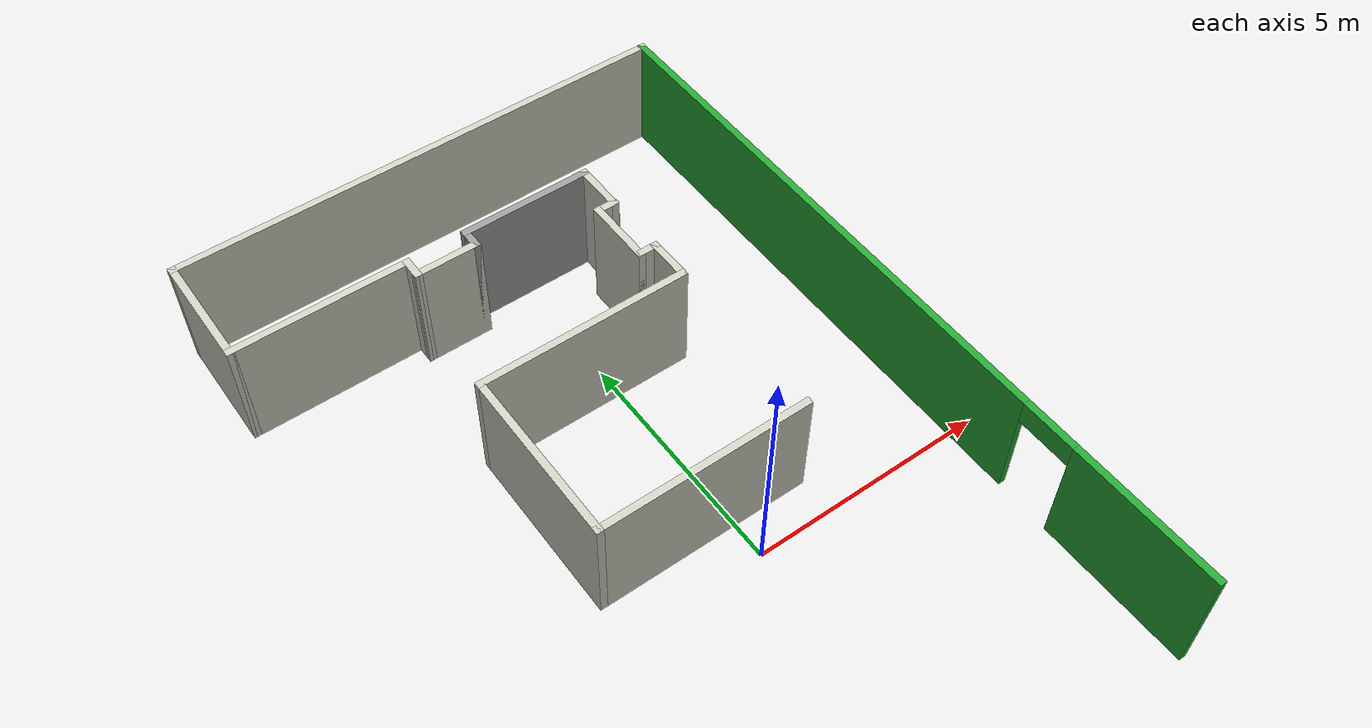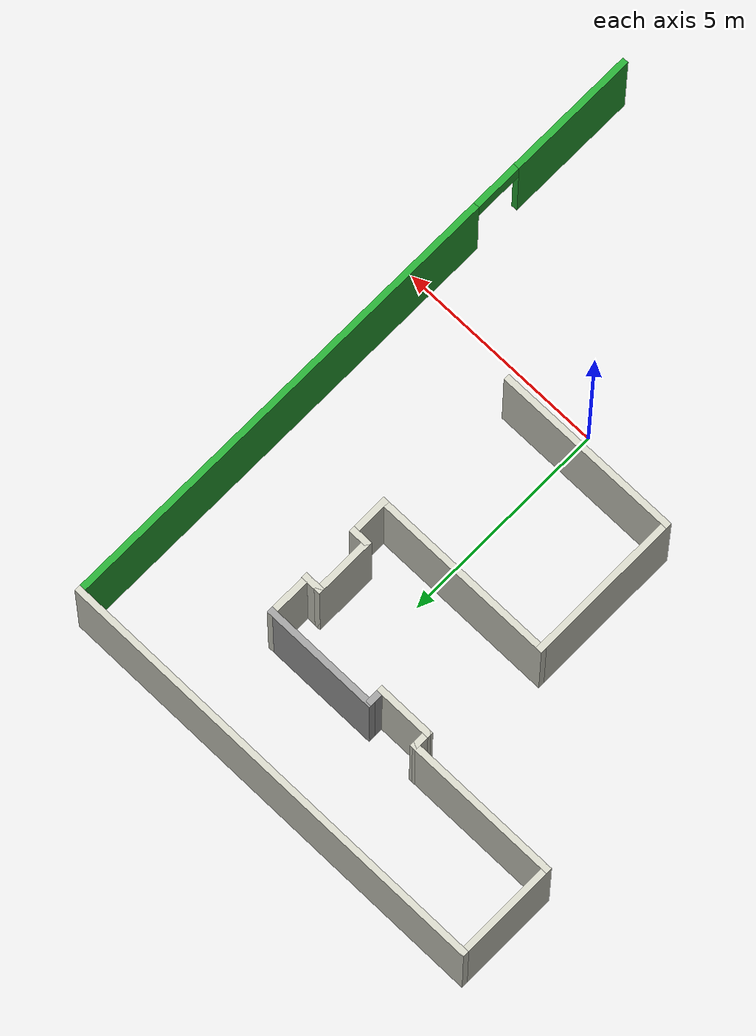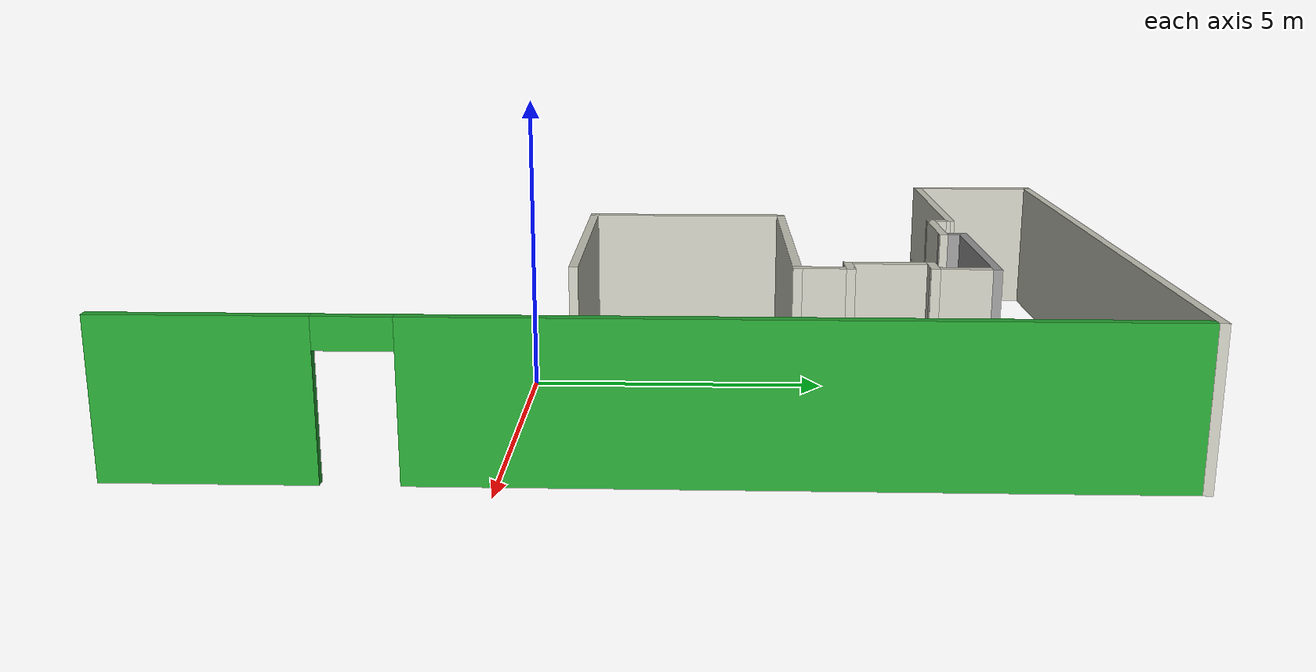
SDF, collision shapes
<sdf version="1.6">
 <model name="teknopark">
  <link name="Wall_20">
   <pose>4.54092 2.156 0 0 -0 1.5708</pose>
   <inertial>
    <mass>1</mass>
    <inertia><ixx>1</ixx><ixy>0</ixy><ixz>0</ixz><iyy>1</iyy><iyz>0</iyz><izz>1</izz></inertia>
   </inertial>
   <visual name="Wall_20_Door">
    <pose>-4.10646 0 0 0 -0 0</pose>
    <geometry>
     <mesh><uri>model://teknopark/meshes/Door_Component_BI3.dae</uri><scale>1.2 1 1</scale></mesh>
    </geometry>
    <material>
     <ambient>0 1 0 1</ambient>
     <diffuse>0 1 0 1</diffuse>
     <specular>0.1 0.1 0.1 1</specular>
     <emissive>0 0 0 1</emissive>
     <script><name>Gazebo/Green</name><uri>__default__</uri></script>
     <shader type="vertex"><normal_map>__default__</normal_map></shader>
    </material>
   </visual>
   <visual name="Wall_20_Visual_1">
    <pose>2.18265 0 1.25 0 -0 0</pose>
    <geometry><box><size>11.4152 0.15 2.5</size></box></geometry>
    <material>
     <script><uri>file://media/materials/scripts/gazebo.material</uri><name>Gazebo/PaintedWall</name></script>
     <ambient>1 1 1 1</ambient>
     <diffuse>0.7 0.7 0.7 1</diffuse>
     <specular>0.01 0.01 0.01 1</specular>
     <emissive>0 0 0 1</emissive>
     <shader type="vertex"><normal_map>__default__</normal_map></shader>
    </material>
   </visual>
   <visual name="ModelPreview_3::Wall_20::visual_3">
    <pose>2.18265 0 1.25 0 -0 0</pose>
    <geometry><box><size>11.4152 0.15 2.5</size></box></geometry>
    <material>
     <script><uri>file://media/materials/scripts/gazebo.material</uri><name>Gazebo/PaintedWall</name></script>
     <ambient>1 1 1 1</ambient>
     <diffuse>0.7 0.7 0.7 1</diffuse>
     <specular>0.01 0.01 0.01 1</specular>
     <emissive>0 0 0 1</emissive>
     <shader type="vertex"><normal_map>__default__</normal_map></shader>
    </material>
   </visual>
   <visual name="Wall_20_Visual_0">
    <pose>-6.28911 0 1.25 0 -0 0</pose>
    <geometry><box><size>3.2023 0.15 2.5</size></box></geometry>
    <material>
     <script><uri>file://media/materials/scripts/gazebo.material</uri><name>Gazebo/PaintedWall</name></script>
     <ambient>1 1 1 1</ambient>
     <diffuse>0.7 0.7 0.7 1</diffuse>
     <specular>0.01 0.01 0.01 1</specular>
     <emissive>0 0 0 1</emissive>
     <shader type="vertex"><normal_map>__default__</normal_map></shader>
    </material>
   </visual>
   <visual name="Wall_20_Visual_2">
    <pose>-4.10646 0 2.25 0 -0 0</pose>
    <geometry><box><size>1.163 0.15 0.5</size></box></geometry>
    <material>
     <script><uri>file://media/materials/scripts/gazebo.material</uri><name>Gazebo/PaintedWall</name></script>
     <ambient>1 1 1 1</ambient>
     <diffuse>0.7 0.7 0.7 1</diffuse>
     <specular>0.01 0.01 0.01 1</specular>
     <emissive>0 0 0 1</emissive>
     <shader type="vertex"><normal_map>__default__</normal_map></shader>
    </material>
   </visual>
   <collision name="Wall_20_Collision_2">
    <pose>-4.10646 0 2.25 0 -0 0</pose>
    <geometry><box><size>1.163 0.15 0.5</size></box></geometry>
    <surface>
     <friction>
      <ode><mu>1</mu><mu2>1</mu2><fdir1>0 0 0</fdir1><slip1>0</slip1><slip2>0</slip2></ode>
      <torsional>
       <coefficient>1</coefficient>
       <patch_radius>0</patch_radius>
       <surface_radius>0</surface_radius>
       <use_patch_radius>1</use_patch_radius>
       <ode><slip>0</slip></ode>
      </torsional>
     </friction>
     <bounce><restitution_coefficient>0</restitution_coefficient><threshold>1e+06</threshold></bounce>
     <contact>
      <collide_without_contact>0</collide_without_contact>
      <collide_without_contact_bitmask>1</collide_without_contact_bitmask>
      <collide_bitmask>1</collide_bitmask>
      <ode>
       <soft_cfm>0</soft_cfm>
       <soft_erp>0.2</soft_erp>
       <kp>1e+13</kp>
       <kd>1</kd>
       <max_vel>0.01</max_vel>
       <min_depth>0</min_depth>
      </ode>
      <bullet>
       <split_impulse>1</split_impulse>
       <split_impulse_penetration_threshold>-0.01</split_impulse_penetration_threshold>
       <soft_cfm>0</soft_cfm>
       <soft_erp>0.2</soft_erp>
       <kp>1e+13</kp>
       <kd>1</kd>
      </bullet>
     </contact>
    </surface>
   </collision>
   <collision name="Wall_20_Collision_0">
    <pose>-6.28911 0 1.25 0 -0 0</pose>
    <geometry><box><size>3.2023 0.15 2.5</size></box></geometry>
    <surface>
     <friction>
      <ode><mu>1</mu><mu2>1</mu2><fdir1>0 0 0</fdir1><slip1>0</slip1><slip2>0</slip2></ode>
      <torsional>
       <coefficient>1</coefficient>
       <patch_radius>0</patch_radius>
       <surface_radius>0</surface_radius>
       <use_patch_radius>1</use_patch_radius>
       <ode><slip>0</slip></ode>
      </torsional>
     </friction>
     <bounce><restitution_coefficient>0</restitution_coefficient><threshold>1e+06</threshold></bounce>
     <contact>
      <collide_without_contact>0</collide_without_contact>
      <collide_without_contact_bitmask>1</collide_without_contact_bitmask>
      <collide_bitmask>1</collide_bitmask>
      <ode>
       <soft_cfm>0</soft_cfm>
       <soft_erp>0.2</soft_erp>
       <kp>1e+13</kp>
       <kd>1</kd>
       <max_vel>0.01</max_vel>
       <min_depth>0</min_depth>
      </ode>
      <bullet>
       <split_impulse>1</split_impulse>
       <split_impulse_penetration_threshold>-0.01</split_impulse_penetration_threshold>
       <soft_cfm>0</soft_cfm>
       <soft_erp>0.2</soft_erp>
       <kp>1e+13</kp>
       <kd>1</kd>
      </bullet>
     </contact>
    </surface>
   </collision>
   <collision name="Wall_20_Collision_1">
    <pose>2.18265 0 1.25 0 -0 0</pose>
    <geometry><box><size>11.4152 0.15 2.5</size></box></geometry>
    <surface>
     <friction>
      <ode><mu>1</mu><mu2>1</mu2><fdir1>0 0 0</fdir1><slip1>0</slip1><slip2>0</slip2></ode>
      <torsional>
       <coefficient>1</coefficient>
       <patch_radius>0</patch_radius>
       <surface_radius>0</surface_radius>
       <use_patch_radius>1</use_patch_radius>
       <ode><slip>0</slip></ode>
      </torsional>
     </friction>
     <bounce><restitution_coefficient>0</restitution_coefficient><threshold>1e+06</threshold></bounce>
     <contact>
      <collide_without_contact>0</collide_without_contact>
      <collide_without_contact_bitmask>1</collide_without_contact_bitmask>
      <collide_bitmask>1</collide_bitmask>
      <ode>
       <soft_cfm>0</soft_cfm>
       <soft_erp>0.2</soft_erp>
       <kp>1e+13</kp>
       <kd>1</kd>
       <max_vel>0.01</max_vel>
       <min_depth>0</min_depth>
      </ode>
      <bullet>
       <split_impulse>1</split_impulse>
       <split_impulse_penetration_threshold>-0.01</split_impulse_penetration_threshold>
       <soft_cfm>0</soft_cfm>
       <soft_erp>0.2</soft_erp>
       <kp>1e+13</kp>
       <kd>1</kd>
      </bullet>
     </contact>
    </surface>
   </collision>
  </link>
  <link name="Wall_22">
   <pose>-0.75892 9.97126 0 0 0 -3.14155</pose>
   <inertial>
    <mass>1</mass>
    <inertia><ixx>1</ixx><ixy>0</ixy><ixz>0</ixz><iyy>1</iyy><iyz>0</iyz><izz>1</izz></inertia>
   </inertial>
   <visual name="Wall_22_Visual">
    <pose>0 0 1.25 0 -0 0</pose>
    <geometry><box><size>10.75 0.15 2.5</size></box></geometry>
    <material>
     <script><uri>file://media/materials/scripts/gazebo.material</uri><name>Gazebo/PaintedWall</name></script>
     <ambient>1 1 1 1</ambient>
     <diffuse>0.7 0.7 0.7 1</diffuse>
     <specular>0.01 0.01 0.01 1</specular>
     <emissive>0 0 0 1</emissive>
     <shader type="vertex"><normal_map>__default__</normal_map></shader>
    </material>
   </visual>
   <collision name="Wall_22_Collision">
    <pose>0 0 1.25 0 -0 0</pose>
    <geometry><box><size>10.75 0.15 2.5</size></box></geometry>
    <surface>
     <friction>
      <ode><mu>1</mu><mu2>1</mu2><fdir1>0 0 0</fdir1><slip1>0</slip1><slip2>0</slip2></ode>
      <torsional>
       <coefficient>1</coefficient>
       <patch_radius>0</patch_radius>
       <surface_radius>0</surface_radius>
       <use_patch_radius>1</use_patch_radius>
       <ode><slip>0</slip></ode>
      </torsional>
     </friction>
     <bounce><restitution_coefficient>0</restitution_coefficient><threshold>1e+06</threshold></bounce>
     <contact>
      <collide_without_contact>0</collide_without_contact>
      <collide_without_contact_bitmask>1</collide_without_contact_bitmask>
      <collide_bitmask>1</collide_bitmask>
      <ode>
       <soft_cfm>0</soft_cfm>
       <soft_erp>0.2</soft_erp>
       <kp>1e+13</kp>
       <kd>1</kd>
       <max_vel>0.01</max_vel>
       <min_depth>0</min_depth>
      </ode>
      <bullet>
       <split_impulse>1</split_impulse>
       <split_impulse_penetration_threshold>-0.01</split_impulse_penetration_threshold>
       <soft_cfm>0</soft_cfm>
       <soft_erp>0.2</soft_erp>
       <kp>1e+13</kp>
       <kd>1</kd>
      </bullet>
     </contact>
    </surface>
   </collision>
  </link>
  <link name="Wall_23">
   <pose>-6.05876 8.79602 0 0 0 -1.5708</pose>
   <inertial>
    <mass>1</mass>
    <inertia><ixx>1</ixx><ixy>0</ixy><ixz>0</ixz><iyy>1</iyy><iyz>0</iyz><izz>1</izz></inertia>
   </inertial>
   <visual name="Wall_23_Visual">
    <pose>0 0 1.25 0 -0 0</pose>
    <geometry><box><size>2.5 0.15 2.5</size></box></geometry>
    <material>
     <script><uri>file://media/materials/scripts/gazebo.material</uri><name>Gazebo/PaintedWall</name></script>
     <ambient>1 1 1 1</ambient>
     <diffuse>0.7 0.7 0.7 1</diffuse>
     <specular>0.01 0.01 0.01 1</specular>
     <emissive>0 0 0 1</emissive>
     <shader type="vertex"><normal_map>__default__</normal_map></shader>
    </material>
   </visual>
   <collision name="Wall_23_Collision">
    <pose>0 0 1.25 0 -0 0</pose>
    <geometry><box><size>2.5 0.15 2.5</size></box></geometry>
    <surface>
     <friction>
      <ode><mu>1</mu><mu2>1</mu2><fdir1>0 0 0</fdir1><slip1>0</slip1><slip2>0</slip2></ode>
      <torsional>
       <coefficient>1</coefficient>
       <patch_radius>0</patch_radius>
       <surface_radius>0</surface_radius>
       <use_patch_radius>1</use_patch_radius>
       <ode><slip>0</slip></ode>
      </torsional>
     </friction>
     <bounce><restitution_coefficient>0</restitution_coefficient><threshold>1e+06</threshold></bounce>
     <contact>
      <collide_without_contact>0</collide_without_contact>
      <collide_without_contact_bitmask>1</collide_without_contact_bitmask>
      <collide_bitmask>1</collide_bitmask>
      <ode>
       <soft_cfm>0</soft_cfm>
       <soft_erp>0.2</soft_erp>
       <kp>1e+13</kp>
       <kd>1</kd>
       <max_vel>0.01</max_vel>
       <min_depth>0</min_depth>
      </ode>
      <bullet>
       <split_impulse>1</split_impulse>
       <split_impulse_penetration_threshold>-0.01</split_impulse_penetration_threshold>
       <soft_cfm>0</soft_cfm>
       <soft_erp>0.2</soft_erp>
       <kp>1e+13</kp>
       <kd>1</kd>
      </bullet>
     </contact>
    </surface>
   </collision>
  </link>
  <link name="Wall_24">
   <pose>-4.25876 7.62102 0 0 -0 0</pose>
   <inertial>
    <mass>1</mass>
    <inertia><ixx>1</ixx><ixy>0</ixy><ixz>0</ixz><iyy>1</iyy><iyz>0</iyz><izz>1</izz></inertia>
   </inertial>
   <visual name="Wall_24_Visual">
    <pose>0 0 1.25 0 -0 0</pose>
    <geometry><box><size>3.75 0.15 2.5</size></box></geometry>
    <material>
     <script><uri>file://media/materials/scripts/gazebo.material</uri><name>Gazebo/PaintedWall</name></script>
     <ambient>1 1 1 1</ambient>
     <diffuse>0.7 0.7 0.7 1</diffuse>
     <specular>0.01 0.01 0.01 1</specular>
     <emissive>0 0 0 1</emissive>
     <shader type="vertex"><normal_map>__default__</normal_map></shader>
    </material>
   </visual>
   <collision name="Wall_24_Collision">
    <pose>0 0 1.25 0 -0 0</pose>
    <geometry><box><size>3.75 0.15 2.5</size></box></geometry>
    <surface>
     <friction>
      <ode><mu>1</mu><mu2>1</mu2><fdir1>0 0 0</fdir1><slip1>0</slip1><slip2>0</slip2></ode>
      <torsional>
       <coefficient>1</coefficient>
       <patch_radius>0</patch_radius>
       <surface_radius>0</surface_radius>
       <use_patch_radius>1</use_patch_radius>
       <ode><slip>0</slip></ode>
      </torsional>
     </friction>
     <bounce><restitution_coefficient>0</restitution_coefficient><threshold>1e+06</threshold></bounce>
     <contact>
      <collide_without_contact>0</collide_without_contact>
      <collide_without_contact_bitmask>1</collide_without_contact_bitmask>
      <collide_bitmask>1</collide_bitmask>
      <ode>
       <soft_cfm>0</soft_cfm>
       <soft_erp>0.2</soft_erp>
       <kp>1e+13</kp>
       <kd>1</kd>
       <max_vel>0.01</max_vel>
       <min_depth>0</min_depth>
      </ode>
      <bullet>
       <split_impulse>1</split_impulse>
       <split_impulse_penetration_threshold>-0.01</split_impulse_penetration_threshold>
       <soft_cfm>0</soft_cfm>
       <soft_erp>0.2</soft_erp>
       <kp>1e+13</kp>
       <kd>1</kd>
      </bullet>
     </contact>
    </surface>
   </collision>
  </link>
  <link name="Wall_25">
   <pose>-2.45892 7.44176 0 0 0 -1.57167</pose>
   <inertial>
    <mass>1</mass>
    <inertia><ixx>1</ixx><ixy>0</ixy><ixz>0</ixz><iyy>1</iyy><iyz>0</iyz><izz>1</izz></inertia>
   </inertial>
   <visual name="Wall_25_Visual">
    <pose>0 0 1.25 0 -0 0</pose>
    <geometry><box><size>0.508524 0.15 2.5</size></box></geometry>
    <material>
     <script><uri>file://media/materials/scripts/gazebo.material</uri><name>Gazebo/PaintedWall</name></script>
     <ambient>1 1 1 1</ambient>
     <diffuse>0.7 0.7 0.7 1</diffuse>
     <specular>0.01 0.01 0.01 1</specular>
     <emissive>0 0 0 1</emissive>
     <shader type="vertex"><normal_map>__default__</normal_map></shader>
    </material>
   </visual>
   <collision name="Wall_25_Collision">
    <pose>0 0 1.25 0 -0 0</pose>
    <geometry><box><size>0.508524 0.15 2.5</size></box></geometry>
    <surface>
     <friction>
      <ode><mu>1</mu><mu2>1</mu2><fdir1>0 0 0</fdir1><slip1>0</slip1><slip2>0</slip2></ode>
      <torsional>
       <coefficient>1</coefficient>
       <patch_radius>0</patch_radius>
       <surface_radius>0</surface_radius>
       <use_patch_radius>1</use_patch_radius>
       <ode><slip>0</slip></ode>
      </torsional>
     </friction>
     <bounce><restitution_coefficient>0</restitution_coefficient><threshold>1e+06</threshold></bounce>
     <contact>
      <collide_without_contact>0</collide_without_contact>
      <collide_without_contact_bitmask>1</collide_without_contact_bitmask>
      <collide_bitmask>1</collide_bitmask>
      <ode>
       <soft_cfm>0</soft_cfm>
       <soft_erp>0.2</soft_erp>
       <kp>1e+13</kp>
       <kd>1</kd>
       <max_vel>0.01</max_vel>
       <min_depth>0</min_depth>
      </ode>
      <bullet>
       <split_impulse>1</split_impulse>
       <split_impulse_penetration_threshold>-0.01</split_impulse_penetration_threshold>
       <soft_cfm>0</soft_cfm>
       <soft_erp>0.2</soft_erp>
       <kp>1e+13</kp>
       <kd>1</kd>
      </bullet>
     </contact>
    </surface>
   </collision>
  </link>
  <link name="Wall_26">
   <pose>-1.82858 7.2625 0 0 -0 0</pose>
   <inertial>
    <mass>1</mass>
    <inertia><ixx>1</ixx><ixy>0</ixy><ixz>0</ixz><iyy>1</iyy><iyz>0</iyz><izz>1</izz></inertia>
   </inertial>
   <visual name="Wall_26_Visual">
    <pose>0 0 1.25 0 -0 0</pose>
    <geometry><box><size>1.411 0.15 2.5</size></box></geometry>
    <material>
     <script><uri>file://media/materials/scripts/gazebo.material</uri><name>Gazebo/PaintedWall</name></script>
     <ambient>1 1 1 1</ambient>
     <diffuse>0.7 0.7 0.7 1</diffuse>
     <specular>0.01 0.01 0.01 1</specular>
     <emissive>0 0 0 1</emissive>
     <shader type="vertex"><normal_map>__default__</normal_map></shader>
    </material>
   </visual>
   <collision name="Wall_26_Collision">
    <pose>0 0 1.25 0 -0 0</pose>
    <geometry><box><size>1.411 0.15 2.5</size></box></geometry>
    <surface>
     <friction>
      <ode><mu>1</mu><mu2>1</mu2><fdir1>0 0 0</fdir1><slip1>0</slip1><slip2>0</slip2></ode>
      <torsional>
       <coefficient>1</coefficient>
       <patch_radius>0</patch_radius>
       <surface_radius>0</surface_radius>
       <use_patch_radius>1</use_patch_radius>
       <ode><slip>0</slip></ode>
      </torsional>
     </friction>
     <bounce><restitution_coefficient>0</restitution_coefficient><threshold>1e+06</threshold></bounce>
     <contact>
      <collide_without_contact>0</collide_without_contact>
      <collide_without_contact_bitmask>1</collide_without_contact_bitmask>
      <collide_bitmask>1</collide_bitmask>
      <ode>
       <soft_cfm>0</soft_cfm>
       <soft_erp>0.2</soft_erp>
       <kp>1e+13</kp>
       <kd>1</kd>
       <max_vel>0.01</max_vel>
       <min_depth>0</min_depth>
      </ode>
      <bullet>
       <split_impulse>1</split_impulse>
       <split_impulse_penetration_threshold>-0.01</split_impulse_penetration_threshold>
       <soft_cfm>0</soft_cfm>
       <soft_erp>0.2</soft_erp>
       <kp>1e+13</kp>
       <kd>1</kd>
      </bullet>
     </contact>
    </surface>
   </collision>
  </link>
  <link name="Wall_35">
   <pose>-1.19808 7.442 0 0 -0 1.5708</pose>
   <visual name="Wall_35_Visual">
    <pose>0 0 1.25 0 -0 0</pose>
    <geometry><box><size>0.509 0.15 2.5</size></box></geometry>
    <material>
     <script><uri>file://media/materials/scripts/gazebo.material</uri><name>Gazebo/Grey</name></script>
     <ambient>1 1 1 1</ambient>
     <diffuse>0.7 0.7 0.7 1</diffuse>
     <specular>0.01 0.01 0.01 1</specular>
     <emissive>0 0 0 1</emissive>
    </material>
   </visual>
   <collision name="Wall_35_Collision">
    <pose>0 0 1.25 0 -0 0</pose>
    <geometry><box><size>0.509 0.15 2.5</size></box></geometry>
    <surface>
     <friction>
      <ode><mu>1</mu><mu2>1</mu2><fdir1>0 0 0</fdir1><slip1>0</slip1><slip2>0</slip2></ode>
      <torsional>
       <coefficient>1</coefficient>
       <patch_radius>0</patch_radius>
       <surface_radius>0</surface_radius>
       <use_patch_radius>1</use_patch_radius>
       <ode><slip>0</slip></ode>
      </torsional>
     </friction>
     <bounce><restitution_coefficient>0</restitution_coefficient><threshold>1e+06</threshold></bounce>
     <contact>
      <collide_without_contact>0</collide_without_contact>
      <collide_without_contact_bitmask>1</collide_without_contact_bitmask>
      <collide_bitmask>1</collide_bitmask>
      <ode>
       <soft_cfm>0</soft_cfm>
       <soft_erp>0.2</soft_erp>
       <kp>1e+13</kp>
       <kd>1</kd>
       <max_vel>0.01</max_vel>
       <min_depth>0</min_depth>
      </ode>
      <bullet>
       <split_impulse>1</split_impulse>
       <split_impulse_penetration_threshold>-0.01</split_impulse_penetration_threshold>
       <soft_cfm>0</soft_cfm>
       <soft_erp>0.2</soft_erp>
       <kp>1e+13</kp>
       <kd>1</kd>
      </bullet>
     </contact>
    </surface>
   </collision>
  </link>
  <link name="Wall_36">
   <pose>0.146424 7.6215 0 0 -0 0</pose>
   <inertial>
    <mass>1</mass>
    <inertia><ixx>1</ixx><ixy>0</ixy><ixz>0</ixz><iyy>1</iyy><iyz>0</iyz><izz>1</izz></inertia>
   </inertial>
   <visual name="ModelPreview_3::Wall_36::visual_1">
    <pose>0 0 1.25 0 -0 0</pose>
    <geometry><box><size>2.83946 0.15 2.5</size></box></geometry>
    <material>
     <script><uri>file://media/materials/scripts/gazebo.material</uri><name>Gazebo/Grey</name></script>
     <ambient>1 1 1 1</ambient>
     <diffuse>0.7 0.7 0.7 1</diffuse>
     <specular>0.01 0.01 0.01 1</specular>
     <emissive>0 0 0 1</emissive>
     <shader type="vertex"><normal_map>__default__</normal_map></shader>
    </material>
   </visual>
   <visual name="Wall_36_Visual">
    <pose>0 0 1.25 0 -0 0</pose>
    <geometry><box><size>2.83946 0.15 2.5</size></box></geometry>
    <material>
     <script><uri>file://media/materials/scripts/gazebo.material</uri><name>Gazebo/PaintedWall</name></script>
     <ambient>1 1 1 1</ambient>
     <diffuse>0.7 0.7 0.7 1</diffuse>
     <specular>0.01 0.01 0.01 1</specular>
     <emissive>0 0 0 1</emissive>
     <shader type="vertex"><normal_map>__default__</normal_map></shader>
    </material>
   </visual>
   <collision name="Wall_36_Collision">
    <pose>0 0 1.25 0 -0 0</pose>
    <geometry><box><size>2.83946 0.15 2.5</size></box></geometry>
    <surface>
     <friction>
      <ode><mu>1</mu><mu2>1</mu2><fdir1>0 0 0</fdir1><slip1>0</slip1><slip2>0</slip2></ode>
      <torsional>
       <coefficient>1</coefficient>
       <patch_radius>0</patch_radius>
       <surface_radius>0</surface_radius>
       <use_patch_radius>1</use_patch_radius>
       <ode><slip>0</slip></ode>
      </torsional>
     </friction>
     <bounce><restitution_coefficient>0</restitution_coefficient><threshold>1e+06</threshold></bounce>
     <contact>
      <collide_without_contact>0</collide_without_contact>
      <collide_without_contact_bitmask>1</collide_without_contact_bitmask>
      <collide_bitmask>1</collide_bitmask>
      <ode>
       <soft_cfm>0</soft_cfm>
       <soft_erp>0.2</soft_erp>
       <kp>1e+13</kp>
       <kd>1</kd>
       <max_vel>0.01</max_vel>
       <min_depth>0</min_depth>
      </ode>
      <bullet>
       <split_impulse>1</split_impulse>
       <split_impulse_penetration_threshold>-0.01</split_impulse_penetration_threshold>
       <soft_cfm>0</soft_cfm>
       <soft_erp>0.2</soft_erp>
       <kp>1e+13</kp>
       <kd>1</kd>
      </bullet>
     </contact>
    </surface>
   </collision>
  </link>
  <link name="Wall_39">
   <pose>1.49092 7.12845 0 0 0 -1.5708</pose>
   <inertial>
    <mass>1</mass>
    <inertia><ixx>1</ixx><ixy>0</ixy><ixz>0</ixz><iyy>1</iyy><iyz>0</iyz><izz>1</izz></inertia>
   </inertial>
   <visual name="Wall_39_Visual">
    <pose>0 0 1.25 0 -0 0</pose>
    <geometry><box><size>1.13637 0.15 2.5</size></box></geometry>
    <material>
     <script><uri>file://media/materials/scripts/gazebo.material</uri><name>Gazebo/PaintedWall</name></script>
     <ambient>1 1 1 1</ambient>
     <diffuse>0.7 0.7 0.7 1</diffuse>
     <specular>0.01 0.01 0.01 1</specular>
     <emissive>0 0 0 1</emissive>
     <shader type="vertex"><normal_map>__default__</normal_map></shader>
    </material>
   </visual>
   <collision name="Wall_39_Collision">
    <pose>0 0 1.25 0 -0 0</pose>
    <geometry><box><size>1.13637 0.15 2.5</size></box></geometry>
    <surface>
     <friction>
      <ode><mu>1</mu><mu2>1</mu2><fdir1>0 0 0</fdir1><slip1>0</slip1><slip2>0</slip2></ode>
      <torsional>
       <coefficient>1</coefficient>
       <patch_radius>0</patch_radius>
       <surface_radius>0</surface_radius>
       <use_patch_radius>1</use_patch_radius>
       <ode><slip>0</slip></ode>
      </torsional>
     </friction>
     <bounce><restitution_coefficient>0</restitution_coefficient><threshold>1e+06</threshold></bounce>
     <contact>
      <collide_without_contact>0</collide_without_contact>
      <collide_without_contact_bitmask>1</collide_without_contact_bitmask>
      <collide_bitmask>1</collide_bitmask>
      <ode>
       <soft_cfm>0</soft_cfm>
       <soft_erp>0.2</soft_erp>
       <kp>1e+13</kp>
       <kd>1</kd>
       <max_vel>0.01</max_vel>
       <min_depth>0</min_depth>
      </ode>
      <bullet>
       <split_impulse>1</split_impulse>
       <split_impulse_penetration_threshold>-0.01</split_impulse_penetration_threshold>
       <soft_cfm>0</soft_cfm>
       <soft_erp>0.2</soft_erp>
       <kp>1e+13</kp>
       <kd>1</kd>
      </bullet>
     </contact>
    </surface>
   </collision>
  </link>
  <link name="Wall_42">
   <pose>1.32349 6.63539 0 0 -0 3.14159</pose>
   <inertial>
    <mass>1</mass>
    <inertia><ixx>1</ixx><ixy>0</ixy><ixz>0</ixz><iyy>1</iyy><iyz>0</iyz><izz>1</izz></inertia>
   </inertial>
   <visual name="Wall_42_Visual">
    <pose>0 0 1.25 0 -0 0</pose>
    <geometry><box><size>0.5 0.15 2.5</size></box></geometry>
    <material>
     <script><uri>file://media/materials/scripts/gazebo.material</uri><name>Gazebo/PaintedWall</name></script>
     <ambient>1 1 1 1</ambient>
     <diffuse>0.7 0.7 0.7 1</diffuse>
     <specular>0.01 0.01 0.01 1</specular>
     <emissive>0 0 0 1</emissive>
     <shader type="vertex"><normal_map>__default__</normal_map></shader>
    </material>
   </visual>
   <collision name="Wall_42_Collision">
    <pose>0 0 1.25 0 -0 0</pose>
    <geometry><box><size>0.5 0.15 2.5</size></box></geometry>
    <surface>
     <friction>
      <ode><mu>1</mu><mu2>1</mu2><fdir1>0 0 0</fdir1><slip1>0</slip1><slip2>0</slip2></ode>
      <torsional>
       <coefficient>1</coefficient>
       <patch_radius>0</patch_radius>
       <surface_radius>0</surface_radius>
       <use_patch_radius>1</use_patch_radius>
       <ode><slip>0</slip></ode>
      </torsional>
     </friction>
     <bounce><restitution_coefficient>0</restitution_coefficient><threshold>1e+06</threshold></bounce>
     <contact>
      <collide_without_contact>0</collide_without_contact>
      <collide_without_contact_bitmask>1</collide_without_contact_bitmask>
      <collide_bitmask>1</collide_bitmask>
      <ode>
       <soft_cfm>0</soft_cfm>
       <soft_erp>0.2</soft_erp>
       <kp>1e+13</kp>
       <kd>1</kd>
       <max_vel>0.01</max_vel>
       <min_depth>0</min_depth>
      </ode>
      <bullet>
       <split_impulse>1</split_impulse>
       <split_impulse_penetration_threshold>-0.01</split_impulse_penetration_threshold>
       <soft_cfm>0</soft_cfm>
       <soft_erp>0.2</soft_erp>
       <kp>1e+13</kp>
       <kd>1</kd>
      </bullet>
     </contact>
    </surface>
   </collision>
  </link>
  <link name="Wall_44">
   <pose>1.14848 5.96039 0 0 0 -1.5708</pose>
   <inertial>
    <mass>1</mass>
    <inertia><ixx>1</ixx><ixy>0</ixy><ixz>0</ixz><iyy>1</iyy><iyz>0</iyz><izz>1</izz></inertia>
   </inertial>
   <visual name="Wall_44_Visual">
    <pose>0 0 1.25 0 -0 0</pose>
    <geometry><box><size>1.5 0.15 2.5</size></box></geometry>
    <material>
     <script><uri>file://media/materials/scripts/gazebo.material</uri><name>Gazebo/PaintedWall</name></script>
     <ambient>1 1 1 1</ambient>
     <diffuse>0.7 0.7 0.7 1</diffuse>
     <specular>0.01 0.01 0.01 1</specular>
     <emissive>0 0 0 1</emissive>
     <shader type="vertex"><normal_map>__default__</normal_map></shader>
    </material>
   </visual>
   <collision name="Wall_44_Collision">
    <pose>0 0 1.25 0 -0 0</pose>
    <geometry><box><size>1.5 0.15 2.5</size></box></geometry>
    <surface>
     <friction>
      <ode><mu>1</mu><mu2>1</mu2><fdir1>0 0 0</fdir1><slip1>0</slip1><slip2>0</slip2></ode>
      <torsional>
       <coefficient>1</coefficient>
       <patch_radius>0</patch_radius>
       <surface_radius>0</surface_radius>
       <use_patch_radius>1</use_patch_radius>
       <ode><slip>0</slip></ode>
      </torsional>
     </friction>
     <bounce><restitution_coefficient>0</restitution_coefficient><threshold>1e+06</threshold></bounce>
     <contact>
      <collide_without_contact>0</collide_without_contact>
      <collide_without_contact_bitmask>1</collide_without_contact_bitmask>
      <collide_bitmask>1</collide_bitmask>
      <ode>
       <soft_cfm>0</soft_cfm>
       <soft_erp>0.2</soft_erp>
       <kp>1e+13</kp>
       <kd>1</kd>
       <max_vel>0.01</max_vel>
       <min_depth>0</min_depth>
      </ode>
      <bullet>
       <split_impulse>1</split_impulse>
       <split_impulse_penetration_threshold>-0.01</split_impulse_penetration_threshold>
       <soft_cfm>0</soft_cfm>
       <soft_erp>0.2</soft_erp>
       <kp>1e+13</kp>
       <kd>1</kd>
      </bullet>
     </contact>
    </surface>
   </collision>
  </link>
  <link name="Wall_45">
   <pose>1.32349 5.28539 0 0 -0 0</pose>
   <inertial>
    <mass>1</mass>
    <inertia><ixx>1</ixx><ixy>0</ixy><ixz>0</ixz><iyy>1</iyy><iyz>0</iyz><izz>1</izz></inertia>
   </inertial>
   <visual name="Wall_45_Visual">
    <pose>0 0 1.25 0 -0 0</pose>
    <geometry><box><size>0.5 0.15 2.5</size></box></geometry>
    <material>
     <script><uri>file://media/materials/scripts/gazebo.material</uri><name>Gazebo/PaintedWall</name></script>
     <ambient>1 1 1 1</ambient>
     <diffuse>0.7 0.7 0.7 1</diffuse>
     <specular>0.01 0.01 0.01 1</specular>
     <emissive>0 0 0 1</emissive>
     <shader type="vertex"><normal_map>__default__</normal_map></shader>
    </material>
   </visual>
   <collision name="Wall_45_Collision">
    <pose>0 0 1.25 0 -0 0</pose>
    <geometry><box><size>0.5 0.15 2.5</size></box></geometry>
    <surface>
     <friction>
      <ode><mu>1</mu><mu2>1</mu2><fdir1>0 0 0</fdir1><slip1>0</slip1><slip2>0</slip2></ode>
      <torsional>
       <coefficient>1</coefficient>
       <patch_radius>0</patch_radius>
       <surface_radius>0</surface_radius>
       <use_patch_radius>1</use_patch_radius>
       <ode><slip>0</slip></ode>
      </torsional>
     </friction>
     <bounce><restitution_coefficient>0</restitution_coefficient><threshold>1e+06</threshold></bounce>
     <contact>
      <collide_without_contact>0</collide_without_contact>
      <collide_without_contact_bitmask>1</collide_without_contact_bitmask>
      <collide_bitmask>1</collide_bitmask>
      <ode>
       <soft_cfm>0</soft_cfm>
       <soft_erp>0.2</soft_erp>
       <kp>1e+13</kp>
       <kd>1</kd>
       <max_vel>0.01</max_vel>
       <min_depth>0</min_depth>
      </ode>
      <bullet>
       <split_impulse>1</split_impulse>
       <split_impulse_penetration_threshold>-0.01</split_impulse_penetration_threshold>
       <soft_cfm>0</soft_cfm>
       <soft_erp>0.2</soft_erp>
       <kp>1e+13</kp>
       <kd>1</kd>
      </bullet>
     </contact>
    </surface>
   </collision>
  </link>
  <link name="Wall_47">
   <pose>1.49848 4.86039 0 0 0 -1.5708</pose>
   <inertial>
    <mass>1</mass>
    <inertia><ixx>1</ixx><ixy>0</ixy><ixz>0</ixz><iyy>1</iyy><iyz>0</iyz><izz>1</izz></inertia>
   </inertial>
   <visual name="Wall_47_Visual">
    <pose>0 0 1.25 0 -0 0</pose>
    <geometry><box><size>1 0.15 2.5</size></box></geometry>
    <material>
     <script><uri>file://media/materials/scripts/gazebo.material</uri><name>Gazebo/PaintedWall</name></script>
     <ambient>1 1 1 1</ambient>
     <diffuse>0.7 0.7 0.7 1</diffuse>
     <specular>0.01 0.01 0.01 1</specular>
     <emissive>0 0 0 1</emissive>
     <shader type="vertex"><normal_map>__default__</normal_map></shader>
    </material>
   </visual>
   <collision name="Wall_47_Collision">
    <pose>0 0 1.25 0 -0 0</pose>
    <geometry><box><size>1 0.15 2.5</size></box></geometry>
    <surface>
     <friction>
      <ode><mu>1</mu><mu2>1</mu2><fdir1>0 0 0</fdir1><slip1>0</slip1><slip2>0</slip2></ode>
      <torsional>
       <coefficient>1</coefficient>
       <patch_radius>0</patch_radius>
       <surface_radius>0</surface_radius>
       <use_patch_radius>1</use_patch_radius>
       <ode><slip>0</slip></ode>
      </torsional>
     </friction>
     <bounce><restitution_coefficient>0</restitution_coefficient><threshold>1e+06</threshold></bounce>
     <contact>
      <collide_without_contact>0</collide_without_contact>
      <collide_without_contact_bitmask>1</collide_without_contact_bitmask>
      <collide_bitmask>1</collide_bitmask>
      <ode>
       <soft_cfm>0</soft_cfm>
       <soft_erp>0.2</soft_erp>
       <kp>1e+13</kp>
       <kd>1</kd>
       <max_vel>0.01</max_vel>
       <min_depth>0</min_depth>
      </ode>
      <bullet>
       <split_impulse>1</split_impulse>
       <split_impulse_penetration_threshold>-0.01</split_impulse_penetration_threshold>
       <soft_cfm>0</soft_cfm>
       <soft_erp>0.2</soft_erp>
       <kp>1e+13</kp>
       <kd>1</kd>
      </bullet>
     </contact>
    </surface>
   </collision>
  </link>
  <link name="Wall_48">
   <pose>-0.676515 4.43539 0 0 -0 3.14159</pose>
   <inertial>
    <mass>1</mass>
    <inertia><ixx>1</ixx><ixy>0</ixy><ixz>0</ixz><iyy>1</iyy><iyz>0</iyz><izz>1</izz></inertia>
   </inertial>
   <visual name="Wall_48_Visual">
    <pose>0 0 1.25 0 -0 0</pose>
    <geometry><box><size>4.5 0.15 2.5</size></box></geometry>
    <material>
     <script><uri>file://media/materials/scripts/gazebo.material</uri><name>Gazebo/PaintedWall</name></script>
     <ambient>1 1 1 1</ambient>
     <diffuse>0.7 0.7 0.7 1</diffuse>
     <specular>0.01 0.01 0.01 1</specular>
     <emissive>0 0 0 1</emissive>
     <shader type="vertex"><normal_map>__default__</normal_map></shader>
    </material>
   </visual>
   <collision name="Wall_48_Collision">
    <pose>0 0 1.25 0 -0 0</pose>
    <geometry><box><size>4.5 0.15 2.5</size></box></geometry>
    <surface>
     <friction>
      <ode><mu>1</mu><mu2>1</mu2><fdir1>0 0 0</fdir1><slip1>0</slip1><slip2>0</slip2></ode>
      <torsional>
       <coefficient>1</coefficient>
       <patch_radius>0</patch_radius>
       <surface_radius>0</surface_radius>
       <use_patch_radius>1</use_patch_radius>
       <ode><slip>0</slip></ode>
      </torsional>
     </friction>
     <bounce><restitution_coefficient>0</restitution_coefficient><threshold>1e+06</threshold></bounce>
     <contact>
      <collide_without_contact>0</collide_without_contact>
      <collide_without_contact_bitmask>1</collide_without_contact_bitmask>
      <collide_bitmask>1</collide_bitmask>
      <ode>
       <soft_cfm>0</soft_cfm>
       <soft_erp>0.2</soft_erp>
       <kp>1e+13</kp>
       <kd>1</kd>
       <max_vel>0.01</max_vel>
       <min_depth>0</min_depth>
      </ode>
      <bullet>
       <split_impulse>1</split_impulse>
       <split_impulse_penetration_threshold>-0.01</split_impulse_penetration_threshold>
       <soft_cfm>0</soft_cfm>
       <soft_erp>0.2</soft_erp>
       <kp>1e+13</kp>
       <kd>1</kd>
      </bullet>
     </contact>
    </surface>
   </collision>
  </link>
  <link name="Wall_49">
   <pose>-2.85152 2.63539 0 0 0 -1.5708</pose>
   <inertial>
    <mass>1</mass>
    <inertia><ixx>1</ixx><ixy>0</ixy><ixz>0</ixz><iyy>1</iyy><iyz>0</iyz><izz>1</izz></inertia>
   </inertial>
   <visual name="Wall_49_Visual">
    <pose>0 0 1.25 0 -0 0</pose>
    <geometry><box><size>3.75 0.15 2.5</size></box></geometry>
    <material>
     <script><uri>file://media/materials/scripts/gazebo.material</uri><name>Gazebo/PaintedWall</name></script>
     <ambient>1 1 1 1</ambient>
     <diffuse>0.7 0.7 0.7 1</diffuse>
     <specular>0.01 0.01 0.01 1</specular>
     <emissive>0 0 0 1</emissive>
     <shader type="vertex"><normal_map>__default__</normal_map></shader>
    </material>
   </visual>
   <collision name="Wall_49_Collision">
    <pose>0 0 1.25 0 -0 0</pose>
    <geometry><box><size>3.75 0.15 2.5</size></box></geometry>
    <surface>
     <friction>
      <ode><mu>1</mu><mu2>1</mu2><fdir1>0 0 0</fdir1><slip1>0</slip1><slip2>0</slip2></ode>
      <torsional>
       <coefficient>1</coefficient>
       <patch_radius>0</patch_radius>
       <surface_radius>0</surface_radius>
       <use_patch_radius>1</use_patch_radius>
       <ode><slip>0</slip></ode>
      </torsional>
     </friction>
     <bounce><restitution_coefficient>0</restitution_coefficient><threshold>1e+06</threshold></bounce>
     <contact>
      <collide_without_contact>0</collide_without_contact>
      <collide_without_contact_bitmask>1</collide_without_contact_bitmask>
      <collide_bitmask>1</collide_bitmask>
      <ode>
       <soft_cfm>0</soft_cfm>
       <soft_erp>0.2</soft_erp>
       <kp>1e+13</kp>
       <kd>1</kd>
       <max_vel>0.01</max_vel>
       <min_depth>0</min_depth>
      </ode>
      <bullet>
       <split_impulse>1</split_impulse>
       <split_impulse_penetration_threshold>-0.01</split_impulse_penetration_threshold>
       <soft_cfm>0</soft_cfm>
       <soft_erp>0.2</soft_erp>
       <kp>1e+13</kp>
       <kd>1</kd>
      </bullet>
     </contact>
    </surface>
   </collision>
  </link>
  <link name="Wall_50">
   <pose>-0.676515 0.835393 0 0 -0 0</pose>
   <inertial>
    <mass>1</mass>
    <inertia><ixx>1</ixx><ixy>0</ixy><ixz>0</ixz><iyy>1</iyy><iyz>0</iyz><izz>1</izz></inertia>
   </inertial>
   <visual name="Wall_50_Visual">
    <pose>0 0 1.25 0 -0 0</pose>
    <geometry><box><size>4.5 0.15 2.5</size></box></geometry>
    <material>
     <script><uri>file://media/materials/scripts/gazebo.material</uri><name>Gazebo/PaintedWall</name></script>
     <ambient>1 1 1 1</ambient>
     <diffuse>0.7 0.7 0.7 1</diffuse>
     <specular>0.01 0.01 0.01 1</specular>
     <emissive>0 0 0 1</emissive>
     <shader type="vertex"><normal_map>__default__</normal_map></shader>
    </material>
   </visual>
   <collision name="Wall_50_Collision">
    <pose>0 0 1.25 0 -0 0</pose>
    <geometry><box><size>4.5 0.15 2.5</size></box></geometry>
    <surface>
     <friction>
      <ode><mu>1</mu><mu2>1</mu2><fdir1>0 0 0</fdir1><slip1>0</slip1><slip2>0</slip2></ode>
      <torsional>
       <coefficient>1</coefficient>
       <patch_radius>0</patch_radius>
       <surface_radius>0</surface_radius>
       <use_patch_radius>1</use_patch_radius>
       <ode><slip>0</slip></ode>
      </torsional>
     </friction>
     <bounce><restitution_coefficient>0</restitution_coefficient><threshold>1e+06</threshold></bounce>
     <contact>
      <collide_without_contact>0</collide_without_contact>
      <collide_without_contact_bitmask>1</collide_without_contact_bitmask>
      <collide_bitmask>1</collide_bitmask>
      <ode>
       <soft_cfm>0</soft_cfm>
       <soft_erp>0.2</soft_erp>
       <kp>1e+13</kp>
       <kd>1</kd>
       <max_vel>0.01</max_vel>
       <min_depth>0</min_depth>
      </ode>
      <bullet>
       <split_impulse>1</split_impulse>
       <split_impulse_penetration_threshold>-0.01</split_impulse_penetration_threshold>
       <soft_cfm>0</soft_cfm>
       <soft_erp>0.2</soft_erp>
       <kp>1e+13</kp>
       <kd>1</kd>
      </bullet>
     </contact>
    </surface>
   </collision>
  </link>
  <static>1</static>
 </model>
</sdf>
